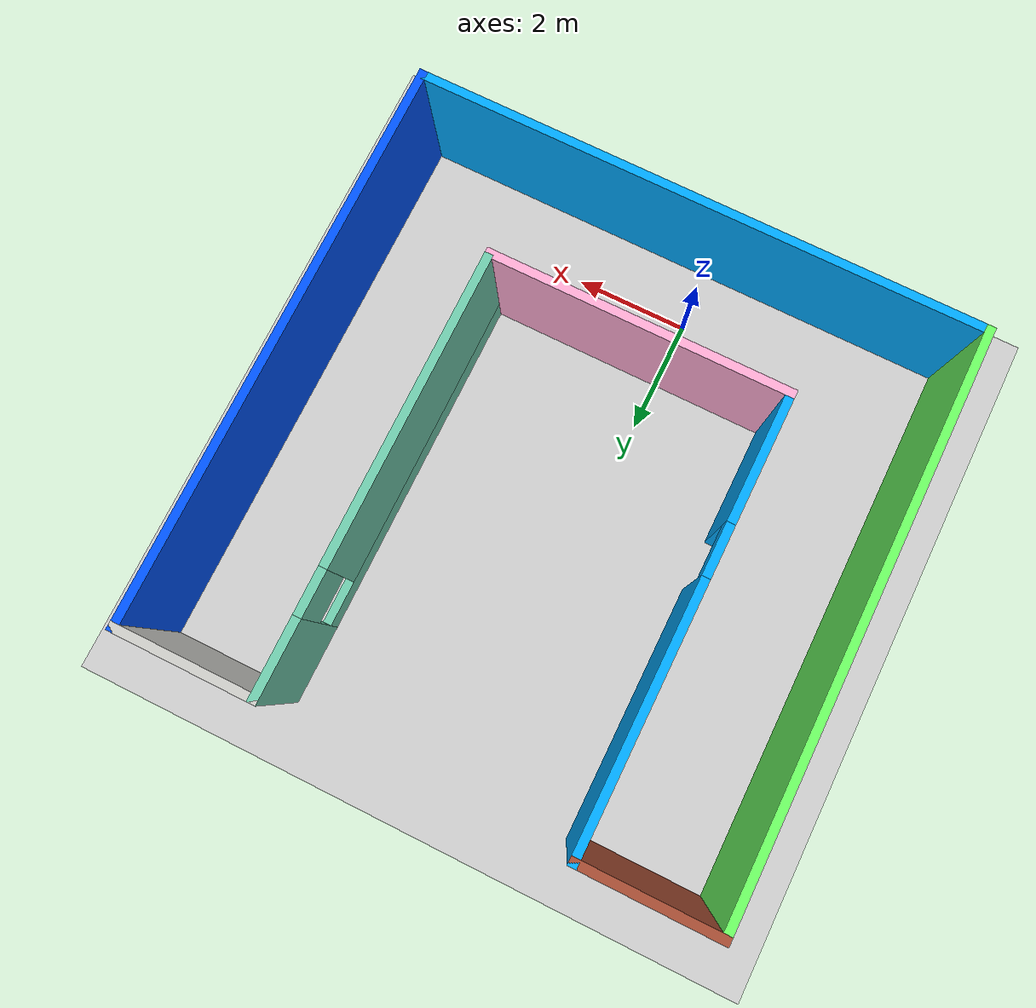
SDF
<sdf version="1.6">
 <world name="default">
  <light name="sun" type="directional">
   <pose>0 0 10 0 -0 0</pose>
   <diffuse>0.8 0.8 0.8 1</diffuse>
   <specular>0.1 0.1 0.1 1</specular>
   <attenuation>
    <range>1000</range>
    <constant>0.9</constant>
    <linear>0.01</linear>
    <quadratic>0.001</quadratic>
   </attenuation>
   <direction>-0.5 0.5 -1</direction>
  </light>
  <model name="ground_plane">
   <static>1</static>
   <link name="link">
    <collision name="collision">
     <geometry><plane><normal>0 0 1</normal><size>100 100</size></plane></geometry>
     <surface><friction><ode><mu>100</mu><mu2>50</mu2></ode></friction></surface>
    </collision>
    <visual name="visual">
     <cast_shadows>0</cast_shadows>
     <geometry><plane><normal>0 0 1</normal><size>100 100</size></plane></geometry>
     <material>
      <script><uri>file://media/materials/scripts/gazebo.material</uri><name>Gazebo/Grey</name></script>
     </material>
    </visual>
   </link>
  </model>
  <gravity>0 0 -9.8</gravity>
  <magnetic_field>6e-06 2.3e-05 -4.2e-05</magnetic_field>
  <atmosphere type="adiabatic"/>
  <physics name="default_physics" default="0" type="ode">
   <max_step_size>0.001</max_step_size>
   <real_time_factor>1</real_time_factor>
   <real_time_update_rate>1000</real_time_update_rate>
  </physics>
  <scene><ambient>0.4 0.4 0.4 1</ambient><background>0.7 0.7 0.7 1</background><shadows>1</shadows></scene>
  <spherical_coordinates>
   <surface_model>EARTH_WGS84</surface_model>
   <latitude_deg>0</latitude_deg>
   <longitude_deg>0</longitude_deg>
   <elevation>0</elevation>
   <heading_deg>0</heading_deg>
  </spherical_coordinates>
  <model name="simpleU">
   <pose>0.54241 3.77024 0 0 -0 0</pose>
   <link name="Wall_10">
    <pose>-2.575 1.12481 0 0 0 -1.5708</pose>
    <visual name="Wall_10_Visual_0">
     <pose>-1.60329 0 1.25 0 -0 0</pose>
     <geometry><box><size>4.54341 0.15 2.5</size></box></geometry>
     <material>
      <script><uri>file://media/materials/scripts/gazebo.material</uri><name>Gazebo/Grey</name></script>
      <ambient>0 0.666667 1 1</ambient>
     </material>
    </visual>
    <collision name="Wall_10_Collision_0">
     <geometry><box><size>4.54341 0.15 2.5</size></box></geometry>
     <pose>-1.60329 0 1.25 0 -0 0</pose>
    </collision>
    <visual name="Wall_10_Visual_1">
     <pose>2.72171 0 1.25 0 -0 0</pose>
     <geometry><box><size>2.30659 0.15 2.5</size></box></geometry>
     <material>
      <script><uri>file://media/materials/scripts/gazebo.material</uri><name>Gazebo/Grey</name></script>
      <ambient>0 0.666667 1 1</ambient>
     </material>
    </visual>
    <collision name="Wall_10_Collision_1">
     <geometry><box><size>2.30659 0.15 2.5</size></box></geometry>
     <pose>2.72171 0 1.25 0 -0 0</pose>
    </collision>
    <visual name="Wall_10_Visual_2">
     <pose>1.11841 0 2.25 0 -0 0</pose>
     <geometry><box><size>0.9 0.15 0.5</size></box></geometry>
     <material>
      <script><uri>file://media/materials/scripts/gazebo.material</uri><name>Gazebo/Grey</name></script>
      <ambient>0 0.666667 1 1</ambient>
     </material>
    </visual>
    <collision name="Wall_10_Collision_2">
     <geometry><box><size>0.9 0.15 0.5</size></box></geometry>
     <pose>1.11841 0 2.25 0 -0 0</pose>
    </collision>
   </link>
   <link name="Wall_11">
    <collision name="Wall_11_Collision">
     <geometry><box><size>5.3 0.15 2.5</size></box></geometry>
     <pose>0 0 1.25 0 -0 0</pose>
    </collision>
    <visual name="Wall_11_Visual">
     <pose>0 0 1.25 0 -0 0</pose>
     <geometry><box><size>5.3 0.15 2.5</size></box></geometry>
     <material>
      <script><uri>file://media/materials/scripts/gazebo.material</uri><name>Gazebo/Grey</name></script>
      <ambient>1 0.670588 0.831373 1</ambient>
     </material>
    </visual>
    <pose>-0.000206 -2.67501 0 0 -0 7.1e-05</pose>
   </link>
   <link name="Wall_3">
    <collision name="Wall_3_Collision">
     <geometry><box><size>10 0.15 2.5</size></box></geometry>
     <pose>0 0 1.25 0 -0 0</pose>
    </collision>
    <visual name="Wall_3_Visual">
     <pose>0 0 1.25 0 -0 0</pose>
     <geometry><box><size>10 0.15 2.5</size></box></geometry>
     <material>
      <script><uri>file://media/materials/scripts/gazebo.material</uri><name>Gazebo/Grey</name></script>
      <ambient>0.423529 1 0.384314 1</ambient>
     </material>
    </visual>
    <pose>-4.925 -0.000189 0 0 0 -1.5708</pose>
   </link>
   <link name="Wall_4">
    <collision name="Wall_4_Collision">
     <geometry><box><size>10 0.15 2.5</size></box></geometry>
     <pose>0 0 1.25 0 -0 0</pose>
    </collision>
    <visual name="Wall_4_Visual">
     <pose>0 0 1.25 0 -0 0</pose>
     <geometry><box><size>10 0.15 2.5</size></box></geometry>
     <material>
      <script><uri>file://media/materials/scripts/gazebo.material</uri><name>Gazebo/Grey</name></script>
      <ambient>0 0.666667 1 1</ambient>
     </material>
    </visual>
    <pose>0 -4.92519 0 0 -0 0</pose>
   </link>
   <link name="Wall_5">
    <collision name="Wall_5_Collision">
     <geometry><box><size>10 0.15 2.5</size></box></geometry>
     <pose>0 0 1.25 0 -0 0</pose>
    </collision>
    <visual name="Wall_5_Visual">
     <pose>0 0 1.25 0 -0 0</pose>
     <geometry><box><size>10 0.15 2.5</size></box></geometry>
     <material>
      <script><uri>file://media/materials/scripts/gazebo.material</uri><name>Gazebo/Grey</name></script>
      <ambient>0 0.333333 1 1</ambient>
     </material>
    </visual>
    <pose>4.925 -0.000189 0 0 -0 1.5708</pose>
   </link>
   <link name="Wall_6">
    <collision name="Wall_6_Collision">
     <geometry><box><size>2.5 0.15 2.5</size></box></geometry>
     <pose>0 0 1.25 0 -0 0</pose>
    </collision>
    <visual name="Wall_6_Visual">
     <pose>0 0 1.25 0 -0 0</pose>
     <geometry><box><size>2.5 0.15 2.5</size></box></geometry>
     <material>
      <script><uri>file://media/materials/scripts/gazebo.material</uri><name>Gazebo/CeilingTiled</name></script>
      <ambient>1 1 1 1</ambient>
     </material>
    </visual>
    <pose>3.74979 4.92499 0 0 -0 3.14144</pose>
   </link>
   <link name="Wall_7">
    <pose>2.57459 1.12518 0 0 0 -1.5708</pose>
    <visual name="Wall_7_Visual_0">
     <pose>-3.17811 0 1.25 0 -0 0</pose>
     <geometry><box><size>1.39378 0.15 2.5</size></box></geometry>
     <material>
      <script><uri>file://media/materials/scripts/gazebo.material</uri><name>Gazebo/Grey</name></script>
      <ambient>0.435294 0.796078 0.67451 1</ambient>
     </material>
    </visual>
    <collision name="Wall_7_Collision_0">
     <geometry><box><size>1.39378 0.15 2.5</size></box></geometry>
     <pose>-3.17811 0 1.25 0 -0 0</pose>
    </collision>
    <visual name="Wall_7_Visual_1">
     <pose>0.696889 0 0.25 0 -0 0</pose>
     <geometry><box><size>6.35622 0.15 0.5</size></box></geometry>
     <material>
      <script><uri>file://media/materials/scripts/gazebo.material</uri><name>Gazebo/Grey</name></script>
      <ambient>0.435294 0.796078 0.67451 1</ambient>
     </material>
    </visual>
    <collision name="Wall_7_Collision_1">
     <geometry><box><size>6.35622 0.15 0.5</size></box></geometry>
     <pose>0.696889 0 0.25 0 -0 0</pose>
    </collision>
    <visual name="Wall_7_Visual_2">
     <pose>1.09689 0 1.5 0 -0 0</pose>
     <geometry><box><size>5.55622 0.15 2</size></box></geometry>
     <material>
      <script><uri>file://media/materials/scripts/gazebo.material</uri><name>Gazebo/Grey</name></script>
      <ambient>0.435294 0.796078 0.67451 1</ambient>
     </material>
    </visual>
    <collision name="Wall_7_Collision_2">
     <geometry><box><size>5.55622 0.15 2</size></box></geometry>
     <pose>1.09689 0 1.5 0 -0 0</pose>
    </collision>
    <visual name="Wall_7_Visual_3">
     <pose>-2.08122 0 1.9 0 -0 0</pose>
     <geometry><box><size>0.8 0.15 1.2</size></box></geometry>
     <material>
      <script><uri>file://media/materials/scripts/gazebo.material</uri><name>Gazebo/Grey</name></script>
      <ambient>0.435294 0.796078 0.67451 1</ambient>
     </material>
    </visual>
    <collision name="Wall_7_Collision_3">
     <geometry><box><size>0.8 0.15 1.2</size></box></geometry>
     <pose>-2.08122 0 1.9 0 -0 0</pose>
    </collision>
   </link>
   <link name="Wall_9">
    <collision name="Wall_9_Collision">
     <geometry><box><size>2.5 0.15 2.5</size></box></geometry>
     <pose>0 0 1.25 0 -0 0</pose>
    </collision>
    <visual name="Wall_9_Visual">
     <pose>0 0 1.25 0 -0 0</pose>
     <geometry><box><size>2.5 0.15 2.5</size></box></geometry>
     <material>
      <script><uri>file://media/materials/scripts/gazebo.material</uri><name>Gazebo/Bricks</name></script>
      <ambient>1 1 1 1</ambient>
     </material>
    </visual>
    <pose>-3.75 4.92481 0 0 -0 0</pose>
   </link>
   <static>1</static>
  </model>
 </world>
</sdf>
